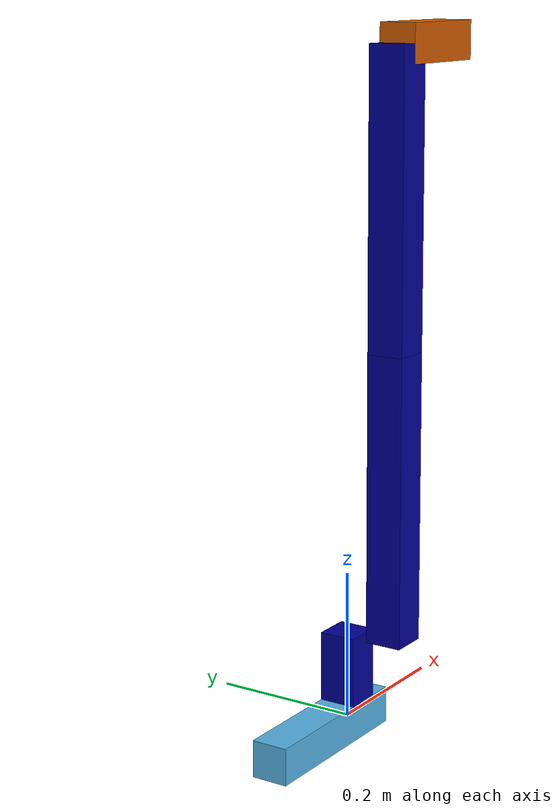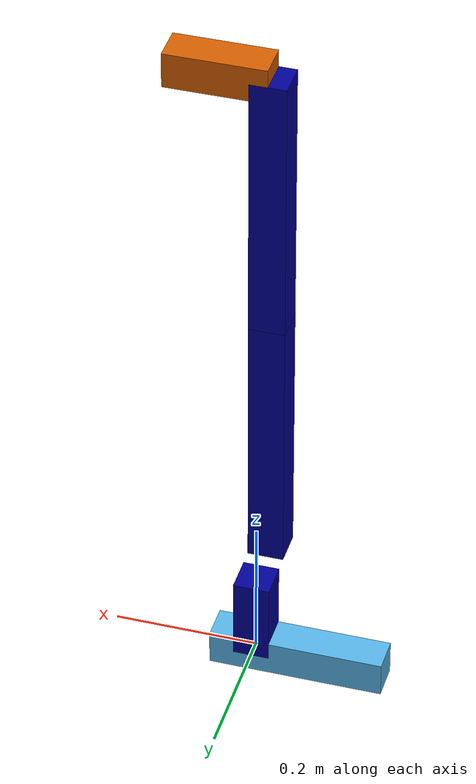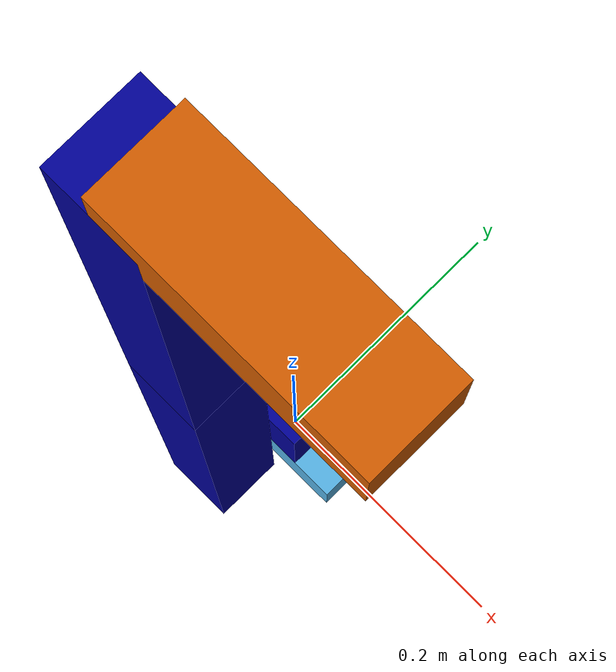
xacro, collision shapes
<?xml version="1.0"?>
<!-- Revolute-Revolute Manipulator -->
<robot name="march" xmlns:xacro="http://www.ros.org/wiki/xacro">
    <!-- Switch between airgaiting or standing on the ground-->
    <!-- Value set to: 'world' fixes the robot to the world-->
    <!-- Value set to: 'base_link' makes the robot stand on the ground also set launch parameter fixed to false and set
    the hover_height to 0.0. Set ground_gait to true to ground gait in simulation.-->
    <xacro:arg name="ground_gait" default="false"/>

    <xacro:unless value="$(arg ground_gait)">
        <xacro:property name="parent_name" value="world"/>
        <xacro:property name="hover_height" value="0.3"/>
    </xacro:unless>
    <xacro:if value="$(arg ground_gait)">
        <xacro:property name="parent_name" value="base_link"/>
        <xacro:property name="hover_height" value="0.0"/>
        <gazebo>
            <plugin name="com_controller_plugin" filename="libmarch_gazebo_plugins.so"/>
        </gazebo>
    </xacro:if>

    <!-- The max effort of the rotary joints is lower then the value corresponding to 25A, because short-circuit errors
    have occured while applying the theoretical max effort for a long time. -->
    <xacro:arg name="max_effort_rotary" default="18000.0" />
    <xacro:arg name="max_effort_linear" default="22932.0" />
    <xacro:property name="max_effort_rotary" value="$(arg max_effort_rotary)" />
    <xacro:property name="max_effort_linear" value="$(arg max_effort_linear)" />

    <!-- Values for the safety limits, see https://wiki.ros.org/pr2_controller_manager/safety_limits -->
    <xacro:arg name="k_velocity_value_hfe" default="20000.0" />
    <xacro:arg name="k_velocity_value_kfe" default="20000.0" />
    <xacro:arg name="k_velocity_value_haa" default="20000.0" />
    <xacro:arg name="k_velocity_value_adpf" default="20000.0" />
    <xacro:property name="k_velocity_value_hfe" value="$(arg k_velocity_value_hfe)" />
    <xacro:property name="k_velocity_value_kfe" value="$(arg k_velocity_value_kfe)" />
    <xacro:property name="k_velocity_value_haa" value="$(arg k_velocity_value_haa)" />
    <xacro:property name="k_velocity_value_adpf" value="$(arg k_velocity_value_adpf)" />

    <xacro:arg name="k_position_value_hfe" default="14.88" />
    <xacro:arg name="k_position_value_kfe" default="14.88" />
    <xacro:arg name="k_position_value_haa" default="4.0" />
    <xacro:arg name="k_position_value_adpf" default="5.0" />
    <xacro:property name="k_position_value_hfe" value="$(arg k_position_value_hfe)" />
    <xacro:property name="k_position_value_kfe" value="$(arg k_position_value_kfe)" />
    <xacro:property name="k_position_value_haa" value="$(arg k_position_value_haa)" />
    <xacro:property name="k_position_value_adpf" value="$(arg k_position_value_adpf)" />

    <!-- Constants for robot dimensions -->
    <!-- Masses determined in Catia, see https://confluence.projectmarch.nl:8443/display/51/URDF+description -->
    <xacro:property name="width" value="0.05"/> <!-- Square dimensions (widthxwidth) of beams -->

    <xacro:property name="hip_base_height" value="0.160"/>
    <xacro:property name="hip_base_mass" value="8.686"/>
    <!-- mass = Hip base + HAA actuators -->

    <xacro:property name="hip_aa_frame_height" value="0.170"/>
    <xacro:property name="hip_aa_frame_width" value="0.1395"/>
    <xacro:property name="hip_aa_mass" value="2.982"/>
    <!-- mass = Moving hip -->

    <xacro:property name="upper_leg_height" value="0.385"/>
    <xacro:property name="upper_leg_offset" value="0.04"/>
    <xacro:property name="upper_leg_mass" value="4.995"/>
    <!-- mass = KFE joint + HFE joint + Upper leg -->

    <xacro:property name="lower_leg_height" value="0.385"/>
    <xacro:property name="lower_leg_mass" value="4.458"/>
    <!-- mass = Ankle actuator + Lower leg -->

    <xacro:property name="ankle_plate_height" value="0.12"/>
    <xacro:property name="ankle_plate_offset" value="0.07"/>

    <xacro:property name="foot_height_forward" value="${0.184}"/>
    <xacro:property name="foot_height_backward" value="${0.059}"/>
    <xacro:property name="foot_mass" value="1.821"/>
    <xacro:property name="foot_mu1" value="1"/>
    <xacro:property name="foot_mu2" value="1"/>
    <!-- Minimum allowable depth before contact correction impulse is applied. -->
    <xacro:property name="foot_min_depth" value="0.0005"/>
    <!-- mass = Passive ankle + foot -->

    <!-- Center of Mass (CoM) of the parts -->
    <!-- CoM has been determined in Catia, see https://confluence.projectmarch.nl:8443/display/51/URDF+description -->
    <xacro:property name="hip_base_com_x" value="${-hip_aa_frame_width + 0.147989}"/>
    <xacro:property name="hip_base_com_y" value="0.016341"/>
    <xacro:property name="hip_base_com_z" value="0.147761"/>

    <xacro:property name="hip_aa_com_x" value="${-hip_aa_frame_width + 0.108094}"/>
    <xacro:property name="hip_aa_com_y" value="${-hip_base_height/2 - hip_aa_frame_height + 0.197758}"/>
    <xacro:property name="hip_aa_com_z" value="0.029507"/>

    <xacro:property name="upper_leg_com_x" value="0.000709"/>
    <xacro:property name="upper_leg_com_y" value="${-hip_base_height/2 - hip_aa_frame_height +
                                                    upper_leg_offset + 0.215254}"/>
    <xacro:property name="upper_leg_com_z" value="-0.19205"/>

    <xacro:property name="lower_leg_com_x" value="-0.00321"/>
    <xacro:property name="lower_leg_com_y" value="${-hip_base_height/2 - hip_aa_frame_height +
                                                    upper_leg_offset + 0.184081}"/>
    <xacro:property name="lower_leg_com_z" value="${upper_leg_height - 0.527082}"/>

    <xacro:property name="foot_com_x" value="-0.028926"/>
    <xacro:property name="foot_com_y" value="${-hip_base_height/2 - hip_aa_frame_height +
                                               upper_leg_offset + ankle_plate_offset + 0.155916}"/>
    <xacro:property name="foot_com_z" value="${upper_leg_height + lower_leg_height + ankle_plate_height - 0.789788}"/>
    <xacro:property name="foot_scale" value="1.35"/>

    <!-- Inertia of the parts -->
    <!-- Inertia's have been determined in Catia, see
         https://confluence.projectmarch.nl:8443/display/51/URDF+description -->
    <xacro:property name="hip_base_Ixx" value="0.141"/>
    <xacro:property name="hip_base_Ixy" value="0.0000336"/>
    <xacro:property name="hip_base_Ixz" value="-0.007"/>
    <xacro:property name="hip_base_Iyy" value="0.087"/>
    <xacro:property name="hip_base_Iyz" value="0.0005089"/>
    <xacro:property name="hip_base_Izz" value="0.091"/>

    <xacro:property name="hip_aa_Ixx" value="0.013"/>
    <xacro:property name="hip_aa_Ixy" value="0.008"/>
    <xacro:property name="hip_aa_Ixz" value="0.005"/>
    <xacro:property name="hip_aa_Iyy" value="0.023"/>
    <xacro:property name="hip_aa_Iyz" value="-0.001"/>
    <xacro:property name="hip_aa_Izz" value="0.028"/>

    <xacro:property name="upper_leg_Ixx" value="0.127"/>
    <xacro:property name="upper_leg_Ixy" value="0.0001291"/>
    <xacro:property name="upper_leg_Ixz" value="-0.0002056"/>
    <xacro:property name="upper_leg_Iyy" value="0.122"/>
    <xacro:property name="upper_leg_Iyz" value="0.016"/>
    <xacro:property name="upper_leg_Izz" value="0.015"/>

    <xacro:property name="lower_leg_Ixx" value="0.075"/>
    <xacro:property name="lower_leg_Ixy" value="-0.027"/>
    <xacro:property name="lower_leg_Ixz" value="-0.008"/>
    <xacro:property name="lower_leg_Iyy" value="0.11"/>
    <xacro:property name="lower_leg_Iyz" value="-0.002"/>
    <xacro:property name="lower_leg_Izz" value="0.071" />

    <xacro:property name="foot_Ixx" value="0.021"/>
    <xacro:property name="foot_Ixy" value="-0.002"/>
    <xacro:property name="foot_Ixz" value="0.02"/>
    <xacro:property name="foot_Iyy" value="0.027"/>
    <xacro:property name="foot_Iyz" value="0.004"/>
    <xacro:property name="foot_Izz" value="0.01" />

    <!-- Joint properties -->
    <!-- For limit calculations, see https://confluence.projectmarch.nl:8443/pages/viewpage.action?pageId=268697604 -->
    <xacro:property name="left_hip_fe_rotation_lower_limit" value="${-21.04431152*pi/180}"/> <!-- rad -->
    <xacro:property name="left_hip_fe_rotation_upper_limit" value="${98.97033691*pi/180}"/> <!-- rad -->

    <xacro:property name="right_hip_fe_rotation_lower_limit" value="${-20.23406982*pi/180}"/> <!-- rad -->
    <xacro:property name="right_hip_fe_rotation_upper_limit" value="${99.48120117*pi/180}"/> <!-- rad -->

    <xacro:property name="hip_fe_soft_buffer" value="${3*pi/180}"/> <!-- rad -->
    <xacro:property name="hip_fe_effort_limit" value="${max_effort_rotary}"/> <!-- IU -->
    <xacro:property name="hip_fe_velocity_limit" value="2.0"/> <!-- rad/s -->

    <xacro:property name="left_hip_aa_rotation_lower_limit" value="${-18.54492188*pi/180}"/> <!-- rad -->
    <xacro:property name="left_hip_aa_rotation_upper_limit" value="${16.34765625*pi/180}"/> <!-- rad -->

    <xacro:property name="right_hip_aa_rotation_lower_limit" value="${-18.10546875*pi/180}"/> <!-- rad -->
    <xacro:property name="right_hip_aa_rotation_upper_limit" value="${15.99609375*pi/180}"/> <!-- rad -->

    <xacro:property name="hip_aa_soft_buffer" value="${3.5*pi/180}"/> <!-- rad -->
    <xacro:property name="hip_aa_effort_limit" value="${max_effort_linear}"/> <!-- IU -->
    <xacro:property name="hip_aa_velocity_limit" value="1.0"/> <!-- rad/s -->

    <xacro:property name="left_knee_rotation_lower_limit" value="${-5.012512207*pi/180}"/>
    <xacro:property name="left_knee_rotation_upper_limit" value="${112.4230957*pi/180}"/>

    <xacro:property name="right_knee_rotation_lower_limit" value="${-4.89440918*pi/180}"/>
    <xacro:property name="right_knee_rotation_upper_limit" value="${115.3097534*pi/180}"/>

    <xacro:property name="knee_extension_soft_buffer" value="${3.5*pi/180}"/> <!-- rad -->
    <xacro:property name="knee_flexion_soft_buffer" value="${3*pi/180}"/> <!-- rad -->
    <xacro:property name="knee_effort_limit" value="${max_effort_rotary}"/> <!-- IU -->
    <xacro:property name="knee_velocity_limit" value="2.5"/>

    <xacro:property name="left_ankle_rotation_lower_limit" value="${-26.30401611*pi/180}"/>
    <xacro:property name="left_ankle_rotation_upper_limit" value="${15.88348389*pi/180}"/>

    <xacro:property name="right_ankle_rotation_lower_limit" value="${-23.203125*pi/180}"/>
    <xacro:property name="right_ankle_rotation_upper_limit" value="${14.23828125*pi/180}"/>

    <xacro:property name="ankle_dorsalflexion_soft_buffer" value="${5*pi/180}"/> <!-- rad -->
    <xacro:property name="ankle_plantarflexion_soft_buffer" value="${3*pi/180}"/> <!-- rad -->
    <xacro:property name="ankle_effort_limit" value="${max_effort_linear}"/> <!-- IU -->
    <xacro:property name="ankle_velocity_limit" value="1.0"/>

    <xacro:property name="camera_link" value="0.05"/> <!-- Size of square 'camera' box -->
    <xacro:property name="axel_offset" value="0.05"/> <!-- Space btw top of beam and the each joint -->

    <!-- Import all Gazebo-customization elements, including Gazebo colors -->
    <xacro:include filename="$(find march_description)/urdf/march.gazebo"/>

    <material name="blue">
        <color rgba="0 0 0.6 1"/>
    </material>

    <!-- Used for fixing robot to Gazebo 'base_link' -->
    <link name="${parent_name}"/>

    <!-- Parts -->
    <!-- New order of links; The new robot model is a chain, with the origin in the 'Foot left' !-->
    <!-- Foot Left -->
    <link name="foot_left">
        <inertial>
            <origin xyz="${foot_com_x} ${-foot_com_y} ${foot_com_z}" rpy="0 0 0"/>
            <mass value="${foot_mass}"/>
            <inertia
                    ixx="${foot_Ixx}"
                    ixy="${-foot_Ixy}"
                    ixz="${foot_Ixz}"
                    iyy="${foot_Iyy}"
                    iyz="${-foot_Iyz}"
                    izz="${foot_Izz}" />
        </inertial>
        <collision>
            <origin xyz="${(-foot_height_forward+foot_height_backward)/2} 0 0" rpy="0 0 0"/>
            <geometry>
                <box size="${foot_height_forward+foot_height_backward} ${width} ${width}"/>
            </geometry>
        </collision>
    </link>

    <gazebo reference="foot_left">
        <mu1>${foot_mu1}</mu1>
        <mu2>${foot_mu2}</mu2>
        <minDepth>${foot_min_depth}</minDepth>
        <fdir1>1 0 0</fdir1>
    </gazebo>

    <!-- Ankle plate Left -->
    <link name="ankle_plate_left">
        <visual>
            <origin
                xyz="0
                     ${hip_base_height/2 + hip_aa_frame_height - upper_leg_offset - ankle_plate_offset}
                     ${foot_scale * (upper_leg_height + lower_leg_height + ankle_plate_height)}"
                rpy="0 0 ${pi}"
            />
            <geometry>
                <mesh filename="package://march_description/urdf/stl-files/LeftFoot.stl" scale="1 1 ${foot_scale}"/>
            </geometry>
            <material name="blue"/>
        </visual>
        <collision>
            <origin xyz="0 0 ${ankle_plate_height/2}" rpy="0 0 0"/>
            <geometry>
                <box size="${width} ${width} ${ankle_plate_height}"/>
            </geometry>
        </collision>
    </link>

    <!-- Lower Leg Left -->
    <link name="lower_leg_left">
        <visual>
            <origin
                xyz="0 ${hip_base_height/2 + hip_aa_frame_height - upper_leg_offset} ${upper_leg_height+lower_leg_height}"
                rpy="0 0 ${pi}"
            />
            <geometry>
                <mesh filename="package://march_description/urdf/stl-files/LowerLeftLeg.stl" scale="1 1 1"/>
            </geometry>
            <material name="blue"/>
        </visual>

        <inertial>
            <origin xyz="${lower_leg_com_x} ${-lower_leg_com_y} ${lower_leg_com_z}" rpy="0 0 0"/>
            <mass value="${lower_leg_mass}"/>
            <inertia
                    ixx="${lower_leg_Ixx}"
                    ixy="${-lower_leg_Ixy}"
                    ixz="${lower_leg_Ixz}"
                    iyy="${lower_leg_Iyy}"
                    iyz="${-lower_leg_Iyz}"
                    izz="${lower_leg_Izz}" />
        </inertial>

        <collision>
            <origin xyz="0 0 ${lower_leg_height/2}" rpy="0 0 0"/>
            <geometry>
                <box size="${width} ${width} ${lower_leg_height}"/>
            </geometry>
        </collision>
    </link>

    <!-- Upper Leg Left-->
    <link name="upper_leg_left">
        <visual>
            <origin xyz="0 ${hip_base_height/2 + hip_aa_frame_height - upper_leg_offset} ${upper_leg_height}" rpy="0 0 ${pi}"/>
            <geometry>
                <mesh filename="package://march_description/urdf/stl-files/UpperLeftLeg.stl" scale="1 1 1"/>
            </geometry>
            <material name="blue"/>
        </visual>

        <inertial>
            <origin xyz="${upper_leg_com_x} ${-upper_leg_com_y} ${upper_leg_com_z}" rpy="0 0 0"/>
            <mass value="${upper_leg_mass}"/>
            <inertia
                    ixx="${upper_leg_Ixx}"
                    ixy="${-upper_leg_Ixy}"
                    ixz="${upper_leg_Ixz}"
                    iyy="${upper_leg_Iyy}"
                    iyz="${-upper_leg_Iyz}"
                    izz="${upper_leg_Izz}" />
        </inertial>

        <collision>
            <origin xyz="0 0 ${upper_leg_height/2}" rpy="0 0 0"/>
            <geometry>
                <box size="${width} ${width} ${upper_leg_height}"/>
            </geometry>
        </collision>
    </link>

    <link name="hip_aa_frame_left_front">
        <inertial>
            <origin xyz="${hip_aa_com_x} ${-hip_aa_com_y} ${hip_aa_com_z}" rpy="0 0 0"/>
            <mass value="${hip_aa_mass}"/>
            <inertia
                    ixx="${hip_aa_Ixx}"
                    ixy="${-hip_aa_Ixy}"
                    ixz="${hip_aa_Ixz}"
                    iyy="${hip_aa_Iyy}"
                    iyz="${-hip_aa_Iyz}"
                    izz="${hip_aa_Izz}" />
        </inertial>

        <collision>
            <origin xyz="${hip_aa_frame_width/2} 0 0" rpy="0 0 0"/>
            <geometry>
                <box size="${hip_aa_frame_width} ${width} ${width}"/>
            </geometry>
        </collision>
    </link>

    <!-- Joints -->
    <joint name = "foot_to_world" type="fixed">
        <parent link="${parent_name}"/>
        <child link="foot_left"/>
    </joint>

    <joint name="left_foot_angle" type="fixed">
        <parent link="foot_left"/>
        <child link="ankle_plate_left"/>
        <origin xyz="0 0 0" rpy="0 0 0"/>
    </joint>

    <joint name="left_ankle" type="revolute">
        <parent link="ankle_plate_left"/>
        <child link="lower_leg_left"/>
        <origin xyz="0 ${-ankle_plate_offset} ${ankle_plate_height}" rpy="0 0 0"/>
        <axis xyz="0 1 0"/>

        <limit velocity="${ankle_velocity_limit}"
               effort="${ankle_effort_limit}"
               lower="${left_ankle_rotation_lower_limit}"
               upper="${left_ankle_rotation_upper_limit}"/>
        <safety_controller soft_lower_limit="${left_ankle_rotation_lower_limit + ankle_plantarflexion_soft_buffer}"
                           soft_upper_limit="${left_ankle_rotation_upper_limit - ankle_dorsalflexion_soft_buffer}"
                           k_position="${k_position_value_adpf}"
                           k_velocity="${k_velocity_value_adpf}" />
    </joint>

    <joint name="left_knee" type="revolute">
        <parent link= "lower_leg_left"/>
        <child link="upper_leg_left"/>
        <origin xyz="0 0 ${lower_leg_height}" rpy="0 0 0"/>
        <axis xyz="0 -1 0"/>

        <limit velocity="${knee_velocity_limit}"
               effort="${knee_effort_limit}"
               lower="${left_knee_rotation_lower_limit}"
               upper="${left_knee_rotation_upper_limit}"/>
        <safety_controller soft_lower_limit="${left_knee_rotation_lower_limit + knee_extension_soft_buffer}"
                           soft_upper_limit="${left_knee_rotation_upper_limit - knee_flexion_soft_buffer}"
                           k_position="${k_position_value_kfe}"
                           k_velocity="${k_velocity_value_kfe}" />
    </joint>

    <joint name="left_hip_fe" type="revolute">
        <parent link="upper_leg_left"/>
        <child link="hip_aa_frame_left_front"/>
        <origin xyz="0 0 ${upper_leg_height}" rpy="0 0 0"/>
        <axis xyz="0 1 0"/>

        <limit velocity="${hip_fe_velocity_limit}"
               effort="${hip_fe_effort_limit}"
               lower="${left_hip_fe_rotation_lower_limit}"
               upper="${left_hip_fe_rotation_upper_limit}"/>
        <safety_controller soft_lower_limit="${left_hip_fe_rotation_lower_limit + hip_fe_soft_buffer}"
                           soft_upper_limit="${left_hip_fe_rotation_upper_limit - hip_fe_soft_buffer}"
                           k_position="${k_position_value_hfe}"
                           k_velocity="${k_velocity_value_hfe}" />
    </joint>

    <!-- ROS Control plugin for Gazebo -->
    <transmission name="left_hip_aa">
        <type>transmission_interface/SimpleTransmission</type>
        <joint name="left_hip_aa">
            <hardwareInterface>hardware_interface/EffortJointInterface</hardwareInterface>
        </joint>
        <actuator name="left_hip_aa_motor">
            <mechanicalReduction>200</mechanicalReduction>
        </actuator>
    </transmission>

    <transmission name="left_hip_fe">
        <type>transmission_interface/SimpleTransmission</type>
        <joint name="left_hip_fe">
            <hardwareInterface>hardware_interface/EffortJointInterface</hardwareInterface>
        </joint>
        <actuator name="left_hip_fe_motor">
            <mechanicalReduction>101</mechanicalReduction>
        </actuator>
    </transmission>

    <transmission name="left_knee">
        <type>transmission_interface/SimpleTransmission</type>
        <joint name="left_knee">
            <hardwareInterface>hardware_interface/EffortJointInterface</hardwareInterface>
        </joint>
        <actuator name="left_knee_motor">
            <mechanicalReduction>101</mechanicalReduction>
        </actuator>
    </transmission>

    <transmission name="left_ankle">
        <type>transmission_interface/SimpleTransmission</type>
        <joint name="left_ankle">
            <hardwareInterface>hardware_interface/EffortJointInterface</hardwareInterface>
        </joint>
        <actuator name="left_ankle_motor">
            <mechanicalReduction>200</mechanicalReduction>
        </actuator>
    </transmission>

    <transmission name="right_hip_aa">
        <type>transmission_interface/SimpleTransmission</type>
        <joint name="right_hip_aa">
            <hardwareInterface>hardware_interface/EffortJointInterface</hardwareInterface>
        </joint>
        <actuator name="right_hip_aa_motor">
            <mechanicalReduction>200</mechanicalReduction>
        </actuator>
    </transmission>

    <transmission name="right_hip_fe">
        <type>transmission_interface/SimpleTransmission</type>
        <joint name="right_hip_fe">
            <hardwareInterface>hardware_interface/EffortJointInterface</hardwareInterface>
        </joint>
        <actuator name="right_hip_fe_motor">
            <mechanicalReduction>101</mechanicalReduction>
        </actuator>
    </transmission>

    <transmission name="right_knee">
        <type>transmission_interface/SimpleTransmission</type>
        <joint name="right_knee">
            <hardwareInterface>hardware_interface/EffortJointInterface</hardwareInterface>
        </joint>
        <actuator name="right_knee_motor">
            <mechanicalReduction>101</mechanicalReduction>
        </actuator>
    </transmission>

    <transmission name="right_ankle">
        <type>transmission_interface/SimpleTransmission</type>
        <joint name="right_ankle">
            <hardwareInterface>hardware_interface/EffortJointInterface</hardwareInterface>
        </joint>
        <actuator name="right_ankle_motor">
            <mechanicalReduction>200</mechanicalReduction>
        </actuator>
    </transmission>
</robot>
